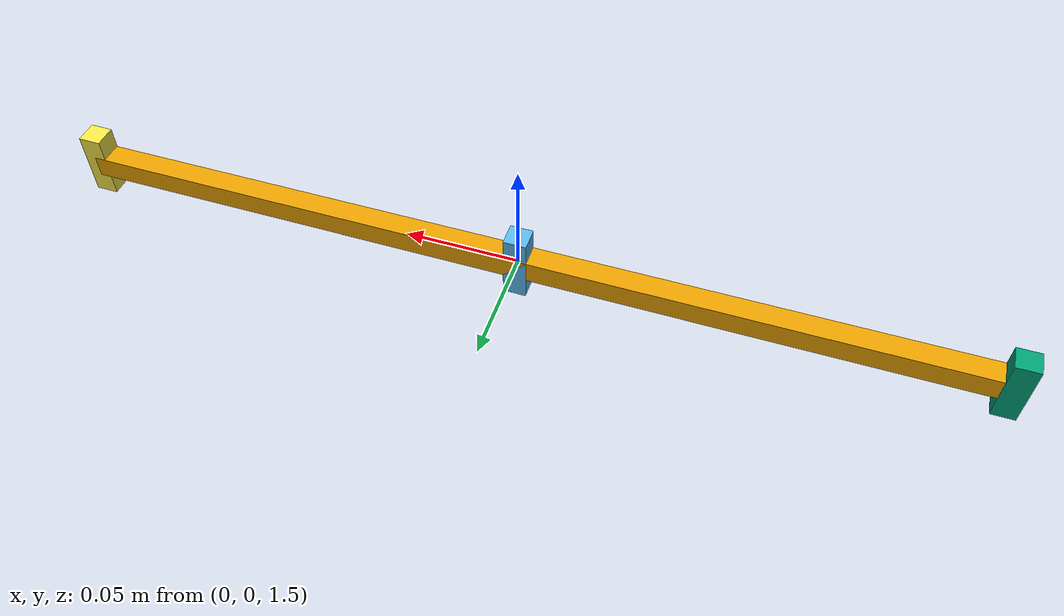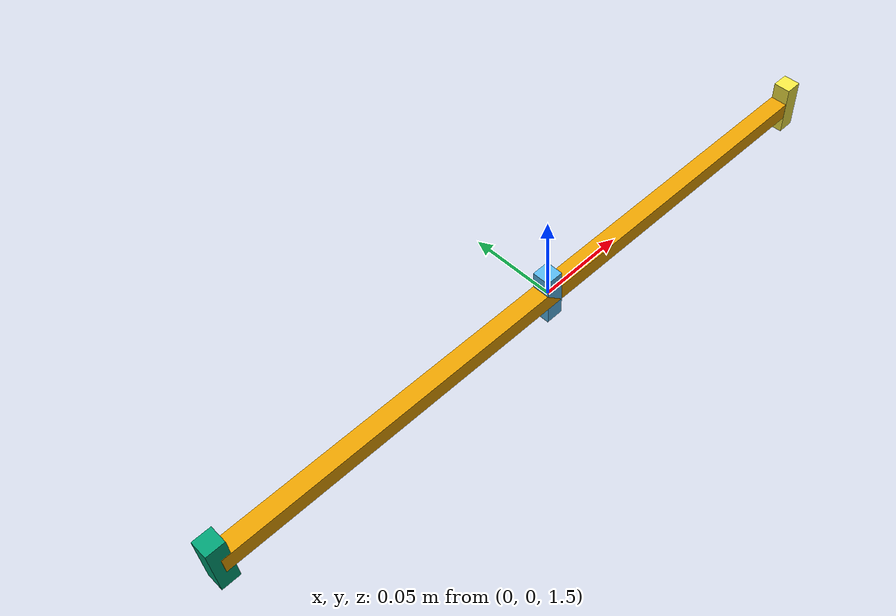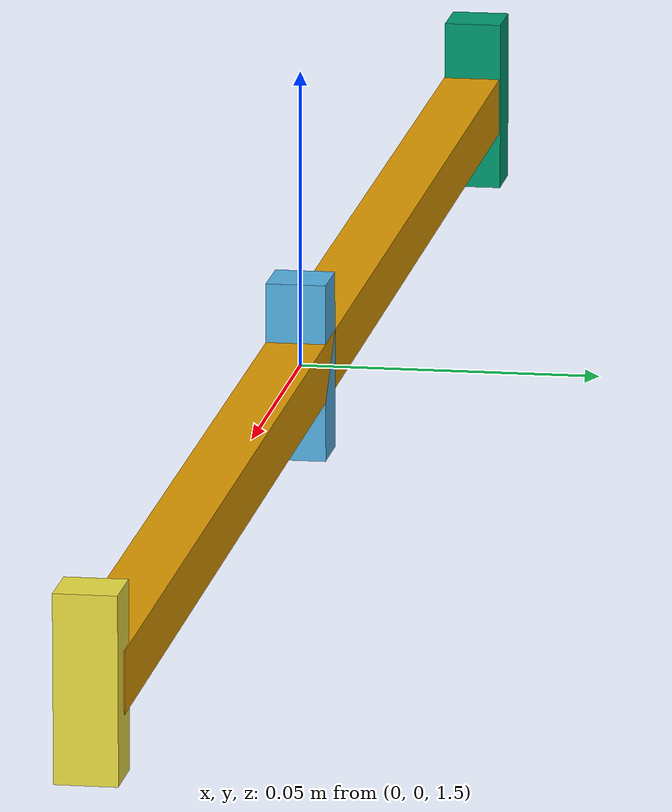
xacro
<?xml version="1.0" ?>
<robot name="simple_camera" xmlns:xacro="http://www.ros.org/wiki/xacro">
  <link name="camera_base">
    <visual>
      <origin xyz="0.0 0 1.5" rpy="0 0 0"/>
      <geometry>
        <box size="0.4 0.01 0.01"/>
      </geometry>
    </visual>
    <inertial>
      <mass value="0.1" />
      <origin xyz="0.0 0 1.5" rpy="0 0 0"/>
      <inertia ixx="0.1" ixy="0" ixz="0" iyy="0.1" iyz="0" izz="0.1" />
    </inertial>
  </link>

  <joint name="imu_joint" type="fixed">
      <parent link="camera_base"/>
      <child link="imu_link"/>
      <axis xyz="0 0 0" />
      <origin rpy="0.0 1.57 1.57" xyz="0.0 0.0 1.5"/>
  </joint>

  <link name="imu_link">
    <visual>
      <geometry>
        <box size="0.03 0.01 0.01"/>
      </geometry>
    </visual>
    <inertial>
      <mass value="0.1" />
      <inertia ixx="0.1" ixy="0" ixz="0" iyy="0.1" iyz="0" izz="0.1" />
    </inertial>
  </link>

   <joint name="camera_joint" type="fixed">
      <parent link="imu_link"/>
      <child link="camera_link"/>
      <axis xyz="0 0 0" />
      <origin rpy="0.0 0.0 0.0" xyz="0.0 0.2 0.0"/>
  </joint>

  <link name="camera_link">
    <visual>
      <geometry>
        <box size="0.03 0.01 0.01"/>
      </geometry>
    </visual>
    <inertial>
      <mass value="0.1" />
      <inertia ixx="0.1" ixy="0" ixz="0" iyy="0.1" iyz="0" izz="0.1" />
    </inertial>
  </link>

<joint name="box_joint" type="fixed">
      <parent link="imu_link"/>
      <child link="box_link"/>
      <axis xyz="0 0 0" />
      <origin rpy="0.0 0.0 0.0" xyz="0.0 -0.2 0.0"/>
  </joint>

  <link name="box_link">
    <visual>
      <geometry>
        <box size="0.03 0.01 0.01"/>
      </geometry>
    </visual>
    <inertial>
      <mass value="0.1" />
      <inertia ixx="0.1" ixy="0" ixz="0" iyy="0.1" iyz="0" izz="0.1" />
    </inertial>
  </link>

  <!-- camera simulator plug-in -->
  <gazebo reference="camera_link">
    <sensor type="camera" name="camera">
      <update_rate>5.0</update_rate>
      <camera name="camera">
        <horizontal_fov>1</horizontal_fov>
        <image>
          <width>640</width>
          <height>480</height>
          <format>R8G8B8</format>
        </image>
        <clip>
          <near>0.005</near>
          <far>4</far>
        </clip>
        <noise>
          <type>gaussian</type>
          <mean>0.0</mean>
          <stddev>0.0</stddev>
        </noise>
      </camera>
      <plugin name="camera_controller" filename="libgazebo_ros_camera.so">
        <alwaysOn>true</alwaysOn>
        <updateRate>0.0</updateRate>
        <cameraName>simple_camera</cameraName>
        <imageTopicName>image_raw</imageTopicName>
        <cameraInfoTopicName>camera_info</cameraInfoTopicName>
        <frameName>camera_link</frameName>
        <distortionK1>0.0</distortionK1>
        <distortionK2>0.0</distortionK2>
        <distortionK3>0.0</distortionK3>
        <distortionT1>0.0</distortionT1>
        <distortionT2>0.0</distortionT2>
      </plugin>
    </sensor>
  </gazebo>

 <gazebo reference="box_link">
    <sensor type="camera" name="camera">
      <update_rate>5.0</update_rate>
      <camera name="camera">
        <horizontal_fov>1</horizontal_fov>
        <image>
          <width>640</width>
          <height>480</height>
          <format>R8G8B8</format>
        </image>
        <clip>
          <near>0.005</near>
          <far>4</far>
        </clip>
        <noise>
          <type>gaussian</type>
          <mean>0.0</mean>
          <stddev>0.0</stddev>
        </noise>
      </camera>
      <plugin name="camera_controller" filename="libgazebo_ros_camera.so">
        <alwaysOn>true</alwaysOn>
        <updateRate>0.0</updateRate>
        <cameraName>simple_camera_right</cameraName>
        <imageTopicName>image_raw_right</imageTopicName>
        <cameraInfoTopicName>camera_info</cameraInfoTopicName>
        <frameName>camera_link</frameName>
        <distortionK1>0.0</distortionK1>
        <distortionK2>0.0</distortionK2>
        <distortionK3>0.0</distortionK3>
        <distortionT1>0.0</distortionT1>
        <distortionT2>0.0</distortionT2>
      </plugin>
    </sensor>
  </gazebo>
<!--reference imu-->

<gazebo reference="imu_link">
    <!--Modity gravity to be false-->
    <gravity>true</gravity>
    <sensor name="imu_sensor" type="imu">
      <always_on>true</always_on>
      <update_rate>50</update_rate>
      <visualize>true</visualize>
      <topic>imu</topic>
      <plugin filename="libgazebo_ros_imu_sensor.so" name="imu_plugin">
        <topicName>imu</topicName>
        <bodyName>imu_link</bodyName>
        <updateRateHZ>50.0</updateRateHZ>

        <gaussianNoise>0.00183</gaussianNoise>
        <xyzOffset>0.0 0.0 0</xyzOffset>
        <rpyOffset>0 0 0</rpyOffset>
        <frameName>imu_link</frameName>
      </plugin>
      <pose>0 0 0 0 0 0</pose>
    </sensor>
  </gazebo>

<gazebo>
<plugin name="imu_sim" filename="libhector_gazebo_ros_imu.so">
  <updateRate>200.0</updateRate>
  <updateRateHz>200.0</updateRateHz>
  <bodyName>imu_link</bodyName>
  <topicName>imu_real</topicName>
  <rpyOffset>0 0 0</rpyOffset>
  <serviceName>/imu/service</serviceName>
  <accelOffset>0 0 0</accelOffset>
  <accelDrift>0.006 0.006 0.006</accelDrift>
  <accelGaussianNoise>0.004 0.004 0.004</accelGaussianNoise>
  <rateDrift>0.000038785 0.000038785 0.000038785</rateDrift>
  <rateGaussianNoise>0.0003394 0.0003394 0.0003394</rateGaussianNoise>
  <yawOffset>0.0 0.0 0.0</yawOffset>
  <yawDrift>0.000038785 0.000038785 0.000038785</yawDrift>
  <yawDriftFrequency>0.0 0.0 0.0</yawDriftFrequency>
  <yawGaussianNoise>0.0003394 0.0003394 0.0003394</yawGaussianNoise>
  <gaussianNoise>0.0</gaussianNoise>
</plugin>
</gazebo>

</robot>
